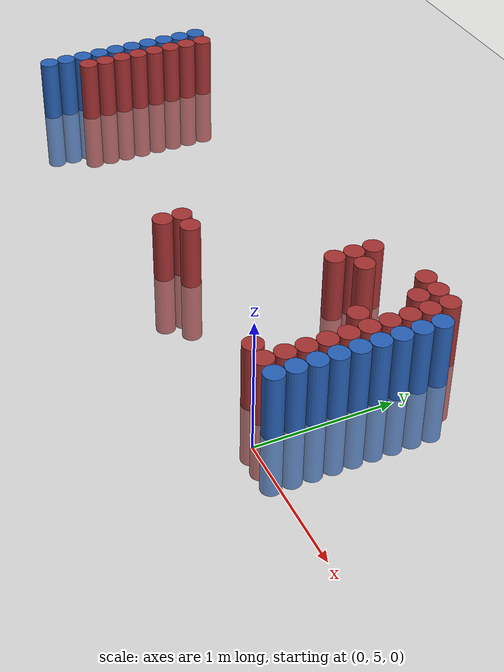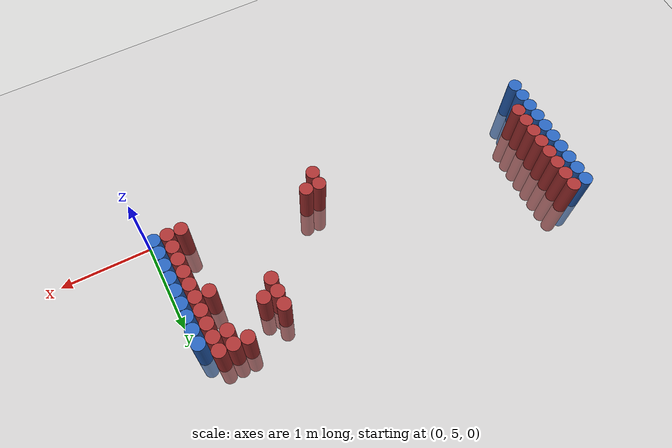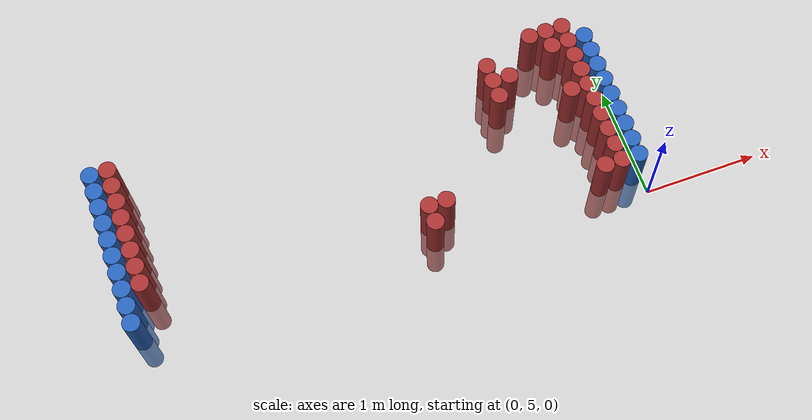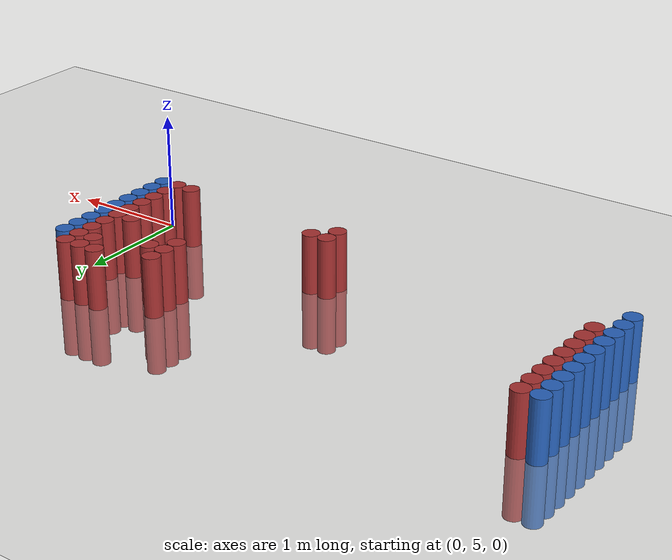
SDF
<sdf version="1.6">
 <world name="default">
  <model name="ground_plane">
   <static>1</static>
   <link name="link">
    <collision name="collision">
     <geometry><plane><normal>0 0 1</normal><size>100 100</size></plane></geometry>
     <surface><friction><ode><mu>100</mu><mu2>50</mu2></ode></friction></surface>
    </collision>
    <visual name="visual">
     <cast_shadows>0</cast_shadows>
     <geometry><plane><normal>0 0 1</normal><size>100 100</size></plane></geometry>
     <material>
      <script><uri>file://media/materials/scripts/gazebo.material</uri><name>Gazebo/Grey</name></script>
     </material>
    </visual>
   </link>
  </model>
  <model name="unit_cylinder_96">
   <static>1</static>
   <pose>-4.425000 5.175000 0.000000 0.000000 0.000000 0.000000</pose>
   <link name="link">
    <inertial>
     <mass>1</mass>
     <inertia><ixx>0.145833</ixx><ixy>0</ixy><ixz>0</ixz><iyy>0.145833</iyy><iyz>0</iyz><izz>0.125</izz></inertia>
    </inertial>
    <collision name="collision">
     <geometry><cylinder><radius>0.075000</radius><length>1</length></cylinder></geometry>
    </collision>
    <visual name="visual">
     <geometry><cylinder><radius>0.075000</radius><length>1</length></cylinder></geometry>
     <material>
      <ambient>0.152000 0.379000 0.720000 1</ambient>
      <diffuse>0.152000 0.379000 0.720000 1</diffuse>
     </material>
     <material>
      <script><name>Gazebo/Grey</name><uri>file://media/materials/scripts/gazebo.material</uri></script>
     </material>
    </visual>
   </link>
  </model>
  <model name="unit_cylinder_97">
   <static>1</static>
   <pose>-4.425000 5.325000 0.000000 0.000000 0.000000 0.000000</pose>
   <link name="link">
    <inertial>
     <mass>1</mass>
     <inertia><ixx>0.145833</ixx><ixy>0</ixy><ixz>0</ixz><iyy>0.145833</iyy><iyz>0</iyz><izz>0.125</izz></inertia>
    </inertial>
    <collision name="collision">
     <geometry><cylinder><radius>0.075000</radius><length>1</length></cylinder></geometry>
    </collision>
    <visual name="visual">
     <geometry><cylinder><radius>0.075000</radius><length>1</length></cylinder></geometry>
     <material>
      <ambient>0.152000 0.379000 0.720000 1</ambient>
      <diffuse>0.152000 0.379000 0.720000 1</diffuse>
     </material>
     <material>
      <script><name>Gazebo/Grey</name><uri>file://media/materials/scripts/gazebo.material</uri></script>
     </material>
    </visual>
   </link>
  </model>
  <model name="unit_cylinder_98">
   <static>1</static>
   <pose>-4.425000 5.475000 0.000000 0.000000 0.000000 0.000000</pose>
   <link name="link">
    <inertial>
     <mass>1</mass>
     <inertia><ixx>0.145833</ixx><ixy>0</ixy><ixz>0</ixz><iyy>0.145833</iyy><iyz>0</iyz><izz>0.125</izz></inertia>
    </inertial>
    <collision name="collision">
     <geometry><cylinder><radius>0.075000</radius><length>1</length></cylinder></geometry>
    </collision>
    <visual name="visual">
     <geometry><cylinder><radius>0.075000</radius><length>1</length></cylinder></geometry>
     <material>
      <ambient>0.152000 0.379000 0.720000 1</ambient>
      <diffuse>0.152000 0.379000 0.720000 1</diffuse>
     </material>
     <material>
      <script><name>Gazebo/Grey</name><uri>file://media/materials/scripts/gazebo.material</uri></script>
     </material>
    </visual>
   </link>
  </model>
  <model name="unit_cylinder_99">
   <static>1</static>
   <pose>-4.425000 5.625000 0.000000 0.000000 0.000000 0.000000</pose>
   <link name="link">
    <inertial>
     <mass>1</mass>
     <inertia><ixx>0.145833</ixx><ixy>0</ixy><ixz>0</ixz><iyy>0.145833</iyy><iyz>0</iyz><izz>0.125</izz></inertia>
    </inertial>
    <collision name="collision">
     <geometry><cylinder><radius>0.075000</radius><length>1</length></cylinder></geometry>
    </collision>
    <visual name="visual">
     <geometry><cylinder><radius>0.075000</radius><length>1</length></cylinder></geometry>
     <material>
      <ambient>0.152000 0.379000 0.720000 1</ambient>
      <diffuse>0.152000 0.379000 0.720000 1</diffuse>
     </material>
     <material>
      <script><name>Gazebo/Grey</name><uri>file://media/materials/scripts/gazebo.material</uri></script>
     </material>
    </visual>
   </link>
  </model>
  <model name="unit_cylinder_100">
   <static>1</static>
   <pose>-4.425000 5.775000 0.000000 0.000000 0.000000 0.000000</pose>
   <link name="link">
    <inertial>
     <mass>1</mass>
     <inertia><ixx>0.145833</ixx><ixy>0</ixy><ixz>0</ixz><iyy>0.145833</iyy><iyz>0</iyz><izz>0.125</izz></inertia>
    </inertial>
    <collision name="collision">
     <geometry><cylinder><radius>0.075000</radius><length>1</length></cylinder></geometry>
    </collision>
    <visual name="visual">
     <geometry><cylinder><radius>0.075000</radius><length>1</length></cylinder></geometry>
     <material>
      <ambient>0.152000 0.379000 0.720000 1</ambient>
      <diffuse>0.152000 0.379000 0.720000 1</diffuse>
     </material>
     <material>
      <script><name>Gazebo/Grey</name><uri>file://media/materials/scripts/gazebo.material</uri></script>
     </material>
    </visual>
   </link>
  </model>
  <model name="unit_cylinder_101">
   <static>1</static>
   <pose>-4.425000 5.925000 0.000000 0.000000 0.000000 0.000000</pose>
   <link name="link">
    <inertial>
     <mass>1</mass>
     <inertia><ixx>0.145833</ixx><ixy>0</ixy><ixz>0</ixz><iyy>0.145833</iyy><iyz>0</iyz><izz>0.125</izz></inertia>
    </inertial>
    <collision name="collision">
     <geometry><cylinder><radius>0.075000</radius><length>1</length></cylinder></geometry>
    </collision>
    <visual name="visual">
     <geometry><cylinder><radius>0.075000</radius><length>1</length></cylinder></geometry>
     <material>
      <ambient>0.152000 0.379000 0.720000 1</ambient>
      <diffuse>0.152000 0.379000 0.720000 1</diffuse>
     </material>
     <material>
      <script><name>Gazebo/Grey</name><uri>file://media/materials/scripts/gazebo.material</uri></script>
     </material>
    </visual>
   </link>
  </model>
  <model name="unit_cylinder_102">
   <static>1</static>
   <pose>-4.425000 6.075000 0.000000 0.000000 0.000000 0.000000</pose>
   <link name="link">
    <inertial>
     <mass>1</mass>
     <inertia><ixx>0.145833</ixx><ixy>0</ixy><ixz>0</ixz><iyy>0.145833</iyy><iyz>0</iyz><izz>0.125</izz></inertia>
    </inertial>
    <collision name="collision">
     <geometry><cylinder><radius>0.075000</radius><length>1</length></cylinder></geometry>
    </collision>
    <visual name="visual">
     <geometry><cylinder><radius>0.075000</radius><length>1</length></cylinder></geometry>
     <material>
      <ambient>0.152000 0.379000 0.720000 1</ambient>
      <diffuse>0.152000 0.379000 0.720000 1</diffuse>
     </material>
     <material>
      <script><name>Gazebo/Grey</name><uri>file://media/materials/scripts/gazebo.material</uri></script>
     </material>
    </visual>
   </link>
  </model>
  <model name="unit_cylinder_103">
   <static>1</static>
   <pose>-4.425000 6.225000 0.000000 0.000000 0.000000 0.000000</pose>
   <link name="link">
    <inertial>
     <mass>1</mass>
     <inertia><ixx>0.145833</ixx><ixy>0</ixy><ixz>0</ixz><iyy>0.145833</iyy><iyz>0</iyz><izz>0.125</izz></inertia>
    </inertial>
    <collision name="collision">
     <geometry><cylinder><radius>0.075000</radius><length>1</length></cylinder></geometry>
    </collision>
    <visual name="visual">
     <geometry><cylinder><radius>0.075000</radius><length>1</length></cylinder></geometry>
     <material>
      <ambient>0.152000 0.379000 0.720000 1</ambient>
      <diffuse>0.152000 0.379000 0.720000 1</diffuse>
     </material>
     <material>
      <script><name>Gazebo/Grey</name><uri>file://media/materials/scripts/gazebo.material</uri></script>
     </material>
    </visual>
   </link>
  </model>
  <model name="unit_cylinder_104">
   <static>1</static>
   <pose>-4.425000 6.375000 0.000000 0.000000 0.000000 0.000000</pose>
   <link name="link">
    <inertial>
     <mass>1</mass>
     <inertia><ixx>0.145833</ixx><ixy>0</ixy><ixz>0</ixz><iyy>0.145833</iyy><iyz>0</iyz><izz>0.125</izz></inertia>
    </inertial>
    <collision name="collision">
     <geometry><cylinder><radius>0.075000</radius><length>1</length></cylinder></geometry>
    </collision>
    <visual name="visual">
     <geometry><cylinder><radius>0.075000</radius><length>1</length></cylinder></geometry>
     <material>
      <ambient>0.152000 0.379000 0.720000 1</ambient>
      <diffuse>0.152000 0.379000 0.720000 1</diffuse>
     </material>
     <material>
      <script><name>Gazebo/Grey</name><uri>file://media/materials/scripts/gazebo.material</uri></script>
     </material>
    </visual>
   </link>
  </model>
  <model name="unit_cylinder_105">
   <static>1</static>
   <pose>-4.425000 6.525000 0.000000 0.000000 0.000000 0.000000</pose>
   <link name="link">
    <inertial>
     <mass>1</mass>
     <inertia><ixx>0.145833</ixx><ixy>0</ixy><ixz>0</ixz><iyy>0.145833</iyy><iyz>0</iyz><izz>0.125</izz></inertia>
    </inertial>
    <collision name="collision">
     <geometry><cylinder><radius>0.075000</radius><length>1</length></cylinder></geometry>
    </collision>
    <visual name="visual">
     <geometry><cylinder><radius>0.075000</radius><length>1</length></cylinder></geometry>
     <material>
      <ambient>0.152000 0.379000 0.720000 1</ambient>
      <diffuse>0.152000 0.379000 0.720000 1</diffuse>
     </material>
     <material>
      <script><name>Gazebo/Grey</name><uri>file://media/materials/scripts/gazebo.material</uri></script>
     </material>
    </visual>
   </link>
  </model>
  <model name="unit_cylinder_126">
   <static>1</static>
   <pose>-4.275000 5.475000 0.000000 0.000000 0.000000 0.000000</pose>
   <link name="link">
    <inertial>
     <mass>1</mass>
     <inertia><ixx>0.145833</ixx><ixy>0</ixy><ixz>0</ixz><iyy>0.145833</iyy><iyz>0</iyz><izz>0.125</izz></inertia>
    </inertial>
    <collision name="collision">
     <geometry><cylinder><radius>0.075000</radius><length>1</length></cylinder></geometry>
    </collision>
    <visual name="visual">
     <geometry><cylinder><radius>0.075000</radius><length>1</length></cylinder></geometry>
     <material>
      <ambient>0.648000 0.192000 0.192000 1</ambient>
      <diffuse>0.648000 0.192000 0.192000 1</diffuse>
     </material>
     <material>
      <script><name>Gazebo/Grey</name><uri>file://media/materials/scripts/gazebo.material</uri></script>
     </material>
    </visual>
   </link>
  </model>
  <model name="unit_cylinder_127">
   <static>1</static>
   <pose>-4.275000 5.625000 0.000000 0.000000 0.000000 0.000000</pose>
   <link name="link">
    <inertial>
     <mass>1</mass>
     <inertia><ixx>0.145833</ixx><ixy>0</ixy><ixz>0</ixz><iyy>0.145833</iyy><iyz>0</iyz><izz>0.125</izz></inertia>
    </inertial>
    <collision name="collision">
     <geometry><cylinder><radius>0.075000</radius><length>1</length></cylinder></geometry>
    </collision>
    <visual name="visual">
     <geometry><cylinder><radius>0.075000</radius><length>1</length></cylinder></geometry>
     <material>
      <ambient>0.648000 0.192000 0.192000 1</ambient>
      <diffuse>0.648000 0.192000 0.192000 1</diffuse>
     </material>
     <material>
      <script><name>Gazebo/Grey</name><uri>file://media/materials/scripts/gazebo.material</uri></script>
     </material>
    </visual>
   </link>
  </model>
  <model name="unit_cylinder_128">
   <static>1</static>
   <pose>-4.275000 5.775000 0.000000 0.000000 0.000000 0.000000</pose>
   <link name="link">
    <inertial>
     <mass>1</mass>
     <inertia><ixx>0.145833</ixx><ixy>0</ixy><ixz>0</ixz><iyy>0.145833</iyy><iyz>0</iyz><izz>0.125</izz></inertia>
    </inertial>
    <collision name="collision">
     <geometry><cylinder><radius>0.075000</radius><length>1</length></cylinder></geometry>
    </collision>
    <visual name="visual">
     <geometry><cylinder><radius>0.075000</radius><length>1</length></cylinder></geometry>
     <material>
      <ambient>0.648000 0.192000 0.192000 1</ambient>
      <diffuse>0.648000 0.192000 0.192000 1</diffuse>
     </material>
     <material>
      <script><name>Gazebo/Grey</name><uri>file://media/materials/scripts/gazebo.material</uri></script>
     </material>
    </visual>
   </link>
  </model>
  <model name="unit_cylinder_129">
   <static>1</static>
   <pose>-4.275000 5.925000 0.000000 0.000000 0.000000 0.000000</pose>
   <link name="link">
    <inertial>
     <mass>1</mass>
     <inertia><ixx>0.145833</ixx><ixy>0</ixy><ixz>0</ixz><iyy>0.145833</iyy><iyz>0</iyz><izz>0.125</izz></inertia>
    </inertial>
    <collision name="collision">
     <geometry><cylinder><radius>0.075000</radius><length>1</length></cylinder></geometry>
    </collision>
    <visual name="visual">
     <geometry><cylinder><radius>0.075000</radius><length>1</length></cylinder></geometry>
     <material>
      <ambient>0.648000 0.192000 0.192000 1</ambient>
      <diffuse>0.648000 0.192000 0.192000 1</diffuse>
     </material>
     <material>
      <script><name>Gazebo/Grey</name><uri>file://media/materials/scripts/gazebo.material</uri></script>
     </material>
    </visual>
   </link>
  </model>
  <model name="unit_cylinder_130">
   <static>1</static>
   <pose>-4.275000 6.075000 0.000000 0.000000 0.000000 0.000000</pose>
   <link name="link">
    <inertial>
     <mass>1</mass>
     <inertia><ixx>0.145833</ixx><ixy>0</ixy><ixz>0</ixz><iyy>0.145833</iyy><iyz>0</iyz><izz>0.125</izz></inertia>
    </inertial>
    <collision name="collision">
     <geometry><cylinder><radius>0.075000</radius><length>1</length></cylinder></geometry>
    </collision>
    <visual name="visual">
     <geometry><cylinder><radius>0.075000</radius><length>1</length></cylinder></geometry>
     <material>
      <ambient>0.648000 0.192000 0.192000 1</ambient>
      <diffuse>0.648000 0.192000 0.192000 1</diffuse>
     </material>
     <material>
      <script><name>Gazebo/Grey</name><uri>file://media/materials/scripts/gazebo.material</uri></script>
     </material>
    </visual>
   </link>
  </model>
  <model name="unit_cylinder_131">
   <static>1</static>
   <pose>-4.275000 6.225000 0.000000 0.000000 0.000000 0.000000</pose>
   <link name="link">
    <inertial>
     <mass>1</mass>
     <inertia><ixx>0.145833</ixx><ixy>0</ixy><ixz>0</ixz><iyy>0.145833</iyy><iyz>0</iyz><izz>0.125</izz></inertia>
    </inertial>
    <collision name="collision">
     <geometry><cylinder><radius>0.075000</radius><length>1</length></cylinder></geometry>
    </collision>
    <visual name="visual">
     <geometry><cylinder><radius>0.075000</radius><length>1</length></cylinder></geometry>
     <material>
      <ambient>0.648000 0.192000 0.192000 1</ambient>
      <diffuse>0.648000 0.192000 0.192000 1</diffuse>
     </material>
     <material>
      <script><name>Gazebo/Grey</name><uri>file://media/materials/scripts/gazebo.material</uri></script>
     </material>
    </visual>
   </link>
  </model>
  <model name="unit_cylinder_132">
   <static>1</static>
   <pose>-4.275000 6.375000 0.000000 0.000000 0.000000 0.000000</pose>
   <link name="link">
    <inertial>
     <mass>1</mass>
     <inertia><ixx>0.145833</ixx><ixy>0</ixy><ixz>0</ixz><iyy>0.145833</iyy><iyz>0</iyz><izz>0.125</izz></inertia>
    </inertial>
    <collision name="collision">
     <geometry><cylinder><radius>0.075000</radius><length>1</length></cylinder></geometry>
    </collision>
    <visual name="visual">
     <geometry><cylinder><radius>0.075000</radius><length>1</length></cylinder></geometry>
     <material>
      <ambient>0.648000 0.192000 0.192000 1</ambient>
      <diffuse>0.648000 0.192000 0.192000 1</diffuse>
     </material>
     <material>
      <script><name>Gazebo/Grey</name><uri>file://media/materials/scripts/gazebo.material</uri></script>
     </material>
    </visual>
   </link>
  </model>
  <model name="unit_cylinder_133">
   <static>1</static>
   <pose>-4.275000 6.525000 0.000000 0.000000 0.000000 0.000000</pose>
   <link name="link">
    <inertial>
     <mass>1</mass>
     <inertia><ixx>0.145833</ixx><ixy>0</ixy><ixz>0</ixz><iyy>0.145833</iyy><iyz>0</iyz><izz>0.125</izz></inertia>
    </inertial>
    <collision name="collision">
     <geometry><cylinder><radius>0.075000</radius><length>1</length></cylinder></geometry>
    </collision>
    <visual name="visual">
     <geometry><cylinder><radius>0.075000</radius><length>1</length></cylinder></geometry>
     <material>
      <ambient>0.648000 0.192000 0.192000 1</ambient>
      <diffuse>0.648000 0.192000 0.192000 1</diffuse>
     </material>
     <material>
      <script><name>Gazebo/Grey</name><uri>file://media/materials/scripts/gazebo.material</uri></script>
     </material>
    </visual>
   </link>
  </model>
  <model name="unit_cylinder_165">
   <static>1</static>
   <pose>-1.875000 5.175000 0.000000 0.000000 0.000000 0.000000</pose>
   <link name="link">
    <inertial>
     <mass>1</mass>
     <inertia><ixx>0.145833</ixx><ixy>0</ixy><ixz>0</ixz><iyy>0.145833</iyy><iyz>0</iyz><izz>0.125</izz></inertia>
    </inertial>
    <collision name="collision">
     <geometry><cylinder><radius>0.075000</radius><length>1</length></cylinder></geometry>
    </collision>
    <visual name="visual">
     <geometry><cylinder><radius>0.075000</radius><length>1</length></cylinder></geometry>
     <material>
      <ambient>0.648000 0.192000 0.192000 1</ambient>
      <diffuse>0.648000 0.192000 0.192000 1</diffuse>
     </material>
     <material>
      <script><name>Gazebo/Grey</name><uri>file://media/materials/scripts/gazebo.material</uri></script>
     </material>
    </visual>
   </link>
  </model>
  <model name="unit_cylinder_166">
   <static>1</static>
   <pose>-1.875000 5.325000 0.000000 0.000000 0.000000 0.000000</pose>
   <link name="link">
    <inertial>
     <mass>1</mass>
     <inertia><ixx>0.145833</ixx><ixy>0</ixy><ixz>0</ixz><iyy>0.145833</iyy><iyz>0</iyz><izz>0.125</izz></inertia>
    </inertial>
    <collision name="collision">
     <geometry><cylinder><radius>0.075000</radius><length>1</length></cylinder></geometry>
    </collision>
    <visual name="visual">
     <geometry><cylinder><radius>0.075000</radius><length>1</length></cylinder></geometry>
     <material>
      <ambient>0.648000 0.192000 0.192000 1</ambient>
      <diffuse>0.648000 0.192000 0.192000 1</diffuse>
     </material>
     <material>
      <script><name>Gazebo/Grey</name><uri>file://media/materials/scripts/gazebo.material</uri></script>
     </material>
    </visual>
   </link>
  </model>
  <model name="unit_cylinder_167">
   <static>1</static>
   <pose>-1.725000 5.325000 0.000000 0.000000 0.000000 0.000000</pose>
   <link name="link">
    <inertial>
     <mass>1</mass>
     <inertia><ixx>0.145833</ixx><ixy>0</ixy><ixz>0</ixz><iyy>0.145833</iyy><iyz>0</iyz><izz>0.125</izz></inertia>
    </inertial>
    <collision name="collision">
     <geometry><cylinder><radius>0.075000</radius><length>1</length></cylinder></geometry>
    </collision>
    <visual name="visual">
     <geometry><cylinder><radius>0.075000</radius><length>1</length></cylinder></geometry>
     <material>
      <ambient>0.648000 0.192000 0.192000 1</ambient>
      <diffuse>0.648000 0.192000 0.192000 1</diffuse>
     </material>
     <material>
      <script><name>Gazebo/Grey</name><uri>file://media/materials/scripts/gazebo.material</uri></script>
     </material>
    </visual>
   </link>
  </model>
  <model name="unit_cylinder_172">
   <static>1</static>
   <pose>-0.975000 6.075000 0.000000 0.000000 0.000000 0.000000</pose>
   <link name="link">
    <inertial>
     <mass>1</mass>
     <inertia><ixx>0.145833</ixx><ixy>0</ixy><ixz>0</ixz><iyy>0.145833</iyy><iyz>0</iyz><izz>0.125</izz></inertia>
    </inertial>
    <collision name="collision">
     <geometry><cylinder><radius>0.075000</radius><length>1</length></cylinder></geometry>
    </collision>
    <visual name="visual">
     <geometry><cylinder><radius>0.075000</radius><length>1</length></cylinder></geometry>
     <material>
      <ambient>0.648000 0.192000 0.192000 1</ambient>
      <diffuse>0.648000 0.192000 0.192000 1</diffuse>
     </material>
     <material>
      <script><name>Gazebo/Grey</name><uri>file://media/materials/scripts/gazebo.material</uri></script>
     </material>
    </visual>
   </link>
  </model>
  <model name="unit_cylinder_173">
   <static>1</static>
   <pose>-0.975000 6.225000 0.000000 0.000000 0.000000 0.000000</pose>
   <link name="link">
    <inertial>
     <mass>1</mass>
     <inertia><ixx>0.145833</ixx><ixy>0</ixy><ixz>0</ixz><iyy>0.145833</iyy><iyz>0</iyz><izz>0.125</izz></inertia>
    </inertial>
    <collision name="collision">
     <geometry><cylinder><radius>0.075000</radius><length>1</length></cylinder></geometry>
    </collision>
    <visual name="visual">
     <geometry><cylinder><radius>0.075000</radius><length>1</length></cylinder></geometry>
     <material>
      <ambient>0.648000 0.192000 0.192000 1</ambient>
      <diffuse>0.648000 0.192000 0.192000 1</diffuse>
     </material>
     <material>
      <script><name>Gazebo/Grey</name><uri>file://media/materials/scripts/gazebo.material</uri></script>
     </material>
    </visual>
   </link>
  </model>
  <model name="unit_cylinder_174">
   <static>1</static>
   <pose>-0.975000 6.375000 0.000000 0.000000 0.000000 0.000000</pose>
   <link name="link">
    <inertial>
     <mass>1</mass>
     <inertia><ixx>0.145833</ixx><ixy>0</ixy><ixz>0</ixz><iyy>0.145833</iyy><iyz>0</iyz><izz>0.125</izz></inertia>
    </inertial>
    <collision name="collision">
     <geometry><cylinder><radius>0.075000</radius><length>1</length></cylinder></geometry>
    </collision>
    <visual name="visual">
     <geometry><cylinder><radius>0.075000</radius><length>1</length></cylinder></geometry>
     <material>
      <ambient>0.648000 0.192000 0.192000 1</ambient>
      <diffuse>0.648000 0.192000 0.192000 1</diffuse>
     </material>
     <material>
      <script><name>Gazebo/Grey</name><uri>file://media/materials/scripts/gazebo.material</uri></script>
     </material>
    </visual>
   </link>
  </model>
  <model name="unit_cylinder_178">
   <static>1</static>
   <pose>-0.825000 6.225000 0.000000 0.000000 0.000000 0.000000</pose>
   <link name="link">
    <inertial>
     <mass>1</mass>
     <inertia><ixx>0.145833</ixx><ixy>0</ixy><ixz>0</ixz><iyy>0.145833</iyy><iyz>0</iyz><izz>0.125</izz></inertia>
    </inertial>
    <collision name="collision">
     <geometry><cylinder><radius>0.075000</radius><length>1</length></cylinder></geometry>
    </collision>
    <visual name="visual">
     <geometry><cylinder><radius>0.075000</radius><length>1</length></cylinder></geometry>
     <material>
      <ambient>0.648000 0.192000 0.192000 1</ambient>
      <diffuse>0.648000 0.192000 0.192000 1</diffuse>
     </material>
     <material>
      <script><name>Gazebo/Grey</name><uri>file://media/materials/scripts/gazebo.material</uri></script>
     </material>
    </visual>
   </link>
  </model>
  <model name="unit_cylinder_187">
   <static>1</static>
   <pose>-0.525000 6.525000 0.000000 0.000000 0.000000 0.000000</pose>
   <link name="link">
    <inertial>
     <mass>1</mass>
     <inertia><ixx>0.145833</ixx><ixy>0</ixy><ixz>0</ixz><iyy>0.145833</iyy><iyz>0</iyz><izz>0.125</izz></inertia>
    </inertial>
    <collision name="collision">
     <geometry><cylinder><radius>0.075000</radius><length>1</length></cylinder></geometry>
    </collision>
    <visual name="visual">
     <geometry><cylinder><radius>0.075000</radius><length>1</length></cylinder></geometry>
     <material>
      <ambient>0.648000 0.192000 0.192000 1</ambient>
      <diffuse>0.648000 0.192000 0.192000 1</diffuse>
     </material>
     <material>
      <script><name>Gazebo/Grey</name><uri>file://media/materials/scripts/gazebo.material</uri></script>
     </material>
    </visual>
   </link>
  </model>
  <model name="unit_cylinder_189">
   <static>1</static>
   <pose>-0.375000 5.175000 0.000000 0.000000 0.000000 0.000000</pose>
   <link name="link">
    <inertial>
     <mass>1</mass>
     <inertia><ixx>0.145833</ixx><ixy>0</ixy><ixz>0</ixz><iyy>0.145833</iyy><iyz>0</iyz><izz>0.125</izz></inertia>
    </inertial>
    <collision name="collision">
     <geometry><cylinder><radius>0.075000</radius><length>1</length></cylinder></geometry>
    </collision>
    <visual name="visual">
     <geometry><cylinder><radius>0.075000</radius><length>1</length></cylinder></geometry>
     <material>
      <ambient>0.648000 0.192000 0.192000 1</ambient>
      <diffuse>0.648000 0.192000 0.192000 1</diffuse>
     </material>
     <material>
      <script><name>Gazebo/Grey</name><uri>file://media/materials/scripts/gazebo.material</uri></script>
     </material>
    </visual>
   </link>
  </model>
  <model name="unit_cylinder_190">
   <static>1</static>
   <pose>-0.375000 5.925000 0.000000 0.000000 0.000000 0.000000</pose>
   <link name="link">
    <inertial>
     <mass>1</mass>
     <inertia><ixx>0.145833</ixx><ixy>0</ixy><ixz>0</ixz><iyy>0.145833</iyy><iyz>0</iyz><izz>0.125</izz></inertia>
    </inertial>
    <collision name="collision">
     <geometry><cylinder><radius>0.075000</radius><length>1</length></cylinder></geometry>
    </collision>
    <visual name="visual">
     <geometry><cylinder><radius>0.075000</radius><length>1</length></cylinder></geometry>
     <material>
      <ambient>0.648000 0.192000 0.192000 1</ambient>
      <diffuse>0.648000 0.192000 0.192000 1</diffuse>
     </material>
     <material>
      <script><name>Gazebo/Grey</name><uri>file://media/materials/scripts/gazebo.material</uri></script>
     </material>
    </visual>
   </link>
  </model>
  <model name="unit_cylinder_191">
   <static>1</static>
   <pose>-0.375000 6.375000 0.000000 0.000000 0.000000 0.000000</pose>
   <link name="link">
    <inertial>
     <mass>1</mass>
     <inertia><ixx>0.145833</ixx><ixy>0</ixy><ixz>0</ixz><iyy>0.145833</iyy><iyz>0</iyz><izz>0.125</izz></inertia>
    </inertial>
    <collision name="collision">
     <geometry><cylinder><radius>0.075000</radius><length>1</length></cylinder></geometry>
    </collision>
    <visual name="visual">
     <geometry><cylinder><radius>0.075000</radius><length>1</length></cylinder></geometry>
     <material>
      <ambient>0.648000 0.192000 0.192000 1</ambient>
      <diffuse>0.648000 0.192000 0.192000 1</diffuse>
     </material>
     <material>
      <script><name>Gazebo/Grey</name><uri>file://media/materials/scripts/gazebo.material</uri></script>
     </material>
    </visual>
   </link>
  </model>
  <model name="unit_cylinder_192">
   <static>1</static>
   <pose>-0.375000 6.525000 0.000000 0.000000 0.000000 0.000000</pose>
   <link name="link">
    <inertial>
     <mass>1</mass>
     <inertia><ixx>0.145833</ixx><ixy>0</ixy><ixz>0</ixz><iyy>0.145833</iyy><iyz>0</iyz><izz>0.125</izz></inertia>
    </inertial>
    <collision name="collision">
     <geometry><cylinder><radius>0.075000</radius><length>1</length></cylinder></geometry>
    </collision>
    <visual name="visual">
     <geometry><cylinder><radius>0.075000</radius><length>1</length></cylinder></geometry>
     <material>
      <ambient>0.648000 0.192000 0.192000 1</ambient>
      <diffuse>0.648000 0.192000 0.192000 1</diffuse>
     </material>
     <material>
      <script><name>Gazebo/Grey</name><uri>file://media/materials/scripts/gazebo.material</uri></script>
     </material>
    </visual>
   </link>
  </model>
  <model name="unit_cylinder_194">
   <static>1</static>
   <pose>-0.225000 5.175000 0.000000 0.000000 0.000000 0.000000</pose>
   <link name="link">
    <inertial>
     <mass>1</mass>
     <inertia><ixx>0.145833</ixx><ixy>0</ixy><ixz>0</ixz><iyy>0.145833</iyy><iyz>0</iyz><izz>0.125</izz></inertia>
    </inertial>
    <collision name="collision">
     <geometry><cylinder><radius>0.075000</radius><length>1</length></cylinder></geometry>
    </collision>
    <visual name="visual">
     <geometry><cylinder><radius>0.075000</radius><length>1</length></cylinder></geometry>
     <material>
      <ambient>0.648000 0.192000 0.192000 1</ambient>
      <diffuse>0.648000 0.192000 0.192000 1</diffuse>
     </material>
     <material>
      <script><name>Gazebo/Grey</name><uri>file://media/materials/scripts/gazebo.material</uri></script>
     </material>
    </visual>
   </link>
  </model>
  <model name="unit_cylinder_195">
   <static>1</static>
   <pose>-0.225000 5.325000 0.000000 0.000000 0.000000 0.000000</pose>
   <link name="link">
    <inertial>
     <mass>1</mass>
     <inertia><ixx>0.145833</ixx><ixy>0</ixy><ixz>0</ixz><iyy>0.145833</iyy><iyz>0</iyz><izz>0.125</izz></inertia>
    </inertial>
    <collision name="collision">
     <geometry><cylinder><radius>0.075000</radius><length>1</length></cylinder></geometry>
    </collision>
    <visual name="visual">
     <geometry><cylinder><radius>0.075000</radius><length>1</length></cylinder></geometry>
     <material>
      <ambient>0.648000 0.192000 0.192000 1</ambient>
      <diffuse>0.648000 0.192000 0.192000 1</diffuse>
     </material>
     <material>
      <script><name>Gazebo/Grey</name><uri>file://media/materials/scripts/gazebo.material</uri></script>
     </material>
    </visual>
   </link>
  </model>
  <model name="unit_cylinder_196">
   <static>1</static>
   <pose>-0.225000 5.475000 0.000000 0.000000 0.000000 0.000000</pose>
   <link name="link">
    <inertial>
     <mass>1</mass>
     <inertia><ixx>0.145833</ixx><ixy>0</ixy><ixz>0</ixz><iyy>0.145833</iyy><iyz>0</iyz><izz>0.125</izz></inertia>
    </inertial>
    <collision name="collision">
     <geometry><cylinder><radius>0.075000</radius><length>1</length></cylinder></geometry>
    </collision>
    <visual name="visual">
     <geometry><cylinder><radius>0.075000</radius><length>1</length></cylinder></geometry>
     <material>
      <ambient>0.648000 0.192000 0.192000 1</ambient>
      <diffuse>0.648000 0.192000 0.192000 1</diffuse>
     </material>
     <material>
      <script><name>Gazebo/Grey</name><uri>file://media/materials/scripts/gazebo.material</uri></script>
     </material>
    </visual>
   </link>
  </model>
  <model name="unit_cylinder_197">
   <static>1</static>
   <pose>-0.225000 5.625000 0.000000 0.000000 0.000000 0.000000</pose>
   <link name="link">
    <inertial>
     <mass>1</mass>
     <inertia><ixx>0.145833</ixx><ixy>0</ixy><ixz>0</ixz><iyy>0.145833</iyy><iyz>0</iyz><izz>0.125</izz></inertia>
    </inertial>
    <collision name="collision">
     <geometry><cylinder><radius>0.075000</radius><length>1</length></cylinder></geometry>
    </collision>
    <visual name="visual">
     <geometry><cylinder><radius>0.075000</radius><length>1</length></cylinder></geometry>
     <material>
      <ambient>0.648000 0.192000 0.192000 1</ambient>
      <diffuse>0.648000 0.192000 0.192000 1</diffuse>
     </material>
     <material>
      <script><name>Gazebo/Grey</name><uri>file://media/materials/scripts/gazebo.material</uri></script>
     </material>
    </visual>
   </link>
  </model>
  <model name="unit_cylinder_198">
   <static>1</static>
   <pose>-0.225000 5.775000 0.000000 0.000000 0.000000 0.000000</pose>
   <link name="link">
    <inertial>
     <mass>1</mass>
     <inertia><ixx>0.145833</ixx><ixy>0</ixy><ixz>0</ixz><iyy>0.145833</iyy><iyz>0</iyz><izz>0.125</izz></inertia>
    </inertial>
    <collision name="collision">
     <geometry><cylinder><radius>0.075000</radius><length>1</length></cylinder></geometry>
    </collision>
    <visual name="visual">
     <geometry><cylinder><radius>0.075000</radius><length>1</length></cylinder></geometry>
     <material>
      <ambient>0.648000 0.192000 0.192000 1</ambient>
      <diffuse>0.648000 0.192000 0.192000 1</diffuse>
     </material>
     <material>
      <script><name>Gazebo/Grey</name><uri>file://media/materials/scripts/gazebo.material</uri></script>
     </material>
    </visual>
   </link>
  </model>
  <model name="unit_cylinder_199">
   <static>1</static>
   <pose>-0.225000 5.925000 0.000000 0.000000 0.000000 0.000000</pose>
   <link name="link">
    <inertial>
     <mass>1</mass>
     <inertia><ixx>0.145833</ixx><ixy>0</ixy><ixz>0</ixz><iyy>0.145833</iyy><iyz>0</iyz><izz>0.125</izz></inertia>
    </inertial>
    <collision name="collision">
     <geometry><cylinder><radius>0.075000</radius><length>1</length></cylinder></geometry>
    </collision>
    <visual name="visual">
     <geometry><cylinder><radius>0.075000</radius><length>1</length></cylinder></geometry>
     <material>
      <ambient>0.648000 0.192000 0.192000 1</ambient>
      <diffuse>0.648000 0.192000 0.192000 1</diffuse>
     </material>
     <material>
      <script><name>Gazebo/Grey</name><uri>file://media/materials/scripts/gazebo.material</uri></script>
     </material>
    </visual>
   </link>
  </model>
  <model name="unit_cylinder_200">
   <static>1</static>
   <pose>-0.225000 6.075000 0.000000 0.000000 0.000000 0.000000</pose>
   <link name="link">
    <inertial>
     <mass>1</mass>
     <inertia><ixx>0.145833</ixx><ixy>0</ixy><ixz>0</ixz><iyy>0.145833</iyy><iyz>0</iyz><izz>0.125</izz></inertia>
    </inertial>
    <collision name="collision">
     <geometry><cylinder><radius>0.075000</radius><length>1</length></cylinder></geometry>
    </collision>
    <visual name="visual">
     <geometry><cylinder><radius>0.075000</radius><length>1</length></cylinder></geometry>
     <material>
      <ambient>0.648000 0.192000 0.192000 1</ambient>
      <diffuse>0.648000 0.192000 0.192000 1</diffuse>
     </material>
     <material>
      <script><name>Gazebo/Grey</name><uri>file://media/materials/scripts/gazebo.material</uri></script>
     </material>
    </visual>
   </link>
  </model>
  <model name="unit_cylinder_201">
   <static>1</static>
   <pose>-0.225000 6.225000 0.000000 0.000000 0.000000 0.000000</pose>
   <link name="link">
    <inertial>
     <mass>1</mass>
     <inertia><ixx>0.145833</ixx><ixy>0</ixy><ixz>0</ixz><iyy>0.145833</iyy><iyz>0</iyz><izz>0.125</izz></inertia>
    </inertial>
    <collision name="collision">
     <geometry><cylinder><radius>0.075000</radius><length>1</length></cylinder></geometry>
    </collision>
    <visual name="visual">
     <geometry><cylinder><radius>0.075000</radius><length>1</length></cylinder></geometry>
     <material>
      <ambient>0.648000 0.192000 0.192000 1</ambient>
      <diffuse>0.648000 0.192000 0.192000 1</diffuse>
     </material>
     <material>
      <script><name>Gazebo/Grey</name><uri>file://media/materials/scripts/gazebo.material</uri></script>
     </material>
    </visual>
   </link>
  </model>
  <model name="unit_cylinder_202">
   <static>1</static>
   <pose>-0.225000 6.375000 0.000000 0.000000 0.000000 0.000000</pose>
   <link name="link">
    <inertial>
     <mass>1</mass>
     <inertia><ixx>0.145833</ixx><ixy>0</ixy><ixz>0</ixz><iyy>0.145833</iyy><iyz>0</iyz><izz>0.125</izz></inertia>
    </inertial>
    <collision name="collision">
     <geometry><cylinder><radius>0.075000</radius><length>1</length></cylinder></geometry>
    </collision>
    <visual name="visual">
     <geometry><cylinder><radius>0.075000</radius><length>1</length></cylinder></geometry>
     <material>
      <ambient>0.648000 0.192000 0.192000 1</ambient>
      <diffuse>0.648000 0.192000 0.192000 1</diffuse>
     </material>
     <material>
      <script><name>Gazebo/Grey</name><uri>file://media/materials/scripts/gazebo.material</uri></script>
     </material>
    </visual>
   </link>
  </model>
  <model name="unit_cylinder_203">
   <static>1</static>
   <pose>-0.225000 6.525000 0.000000 0.000000 0.000000 0.000000</pose>
   <link name="link">
    <inertial>
     <mass>1</mass>
     <inertia><ixx>0.145833</ixx><ixy>0</ixy><ixz>0</ixz><iyy>0.145833</iyy><iyz>0</iyz><izz>0.125</izz></inertia>
    </inertial>
    <collision name="collision">
     <geometry><cylinder><radius>0.075000</radius><length>1</length></cylinder></geometry>
    </collision>
    <visual name="visual">
     <geometry><cylinder><radius>0.075000</radius><length>1</length></cylinder></geometry>
     <material>
      <ambient>0.648000 0.192000 0.192000 1</ambient>
      <diffuse>0.648000 0.192000 0.192000 1</diffuse>
     </material>
     <material>
      <script><name>Gazebo/Grey</name><uri>file://media/materials/scripts/gazebo.material</uri></script>
     </material>
    </visual>
   </link>
  </model>
  <model name="unit_cylinder_212">
   <static>1</static>
   <pose>-0.075000 5.175000 0.000000 0.000000 0.000000 0.000000</pose>
   <link name="link">
    <inertial>
     <mass>1</mass>
     <inertia><ixx>0.145833</ixx><ixy>0</ixy><ixz>0</ixz><iyy>0.145833</iyy><iyz>0</iyz><izz>0.125</izz></inertia>
    </inertial>
    <collision name="collision">
     <geometry><cylinder><radius>0.075000</radius><length>1</length></cylinder></geometry>
    </collision>
    <visual name="visual">
     <geometry><cylinder><radius>0.075000</radius><length>1</length></cylinder></geometry>
     <material>
      <ambient>0.152000 0.379000 0.720000 1</ambient>
      <diffuse>0.152000 0.379000 0.720000 1</diffuse>
     </material>
     <material>
      <script><name>Gazebo/Grey</name><uri>file://media/materials/scripts/gazebo.material</uri></script>
     </material>
    </visual>
   </link>
  </model>
  <model name="unit_cylinder_213">
   <static>1</static>
   <pose>-0.075000 5.325000 0.000000 0.000000 0.000000 0.000000</pose>
   <link name="link">
    <inertial>
     <mass>1</mass>
     <inertia><ixx>0.145833</ixx><ixy>0</ixy><ixz>0</ixz><iyy>0.145833</iyy><iyz>0</iyz><izz>0.125</izz></inertia>
    </inertial>
    <collision name="collision">
     <geometry><cylinder><radius>0.075000</radius><length>1</length></cylinder></geometry>
    </collision>
    <visual name="visual">
     <geometry><cylinder><radius>0.075000</radius><length>1</length></cylinder></geometry>
     <material>
      <ambient>0.152000 0.379000 0.720000 1</ambient>
      <diffuse>0.152000 0.379000 0.720000 1</diffuse>
     </material>
     <material>
      <script><name>Gazebo/Grey</name><uri>file://media/materials/scripts/gazebo.material</uri></script>
     </material>
    </visual>
   </link>
  </model>
  <model name="unit_cylinder_214">
   <static>1</static>
   <pose>-0.075000 5.475000 0.000000 0.000000 0.000000 0.000000</pose>
   <link name="link">
    <inertial>
     <mass>1</mass>
     <inertia><ixx>0.145833</ixx><ixy>0</ixy><ixz>0</ixz><iyy>0.145833</iyy><iyz>0</iyz><izz>0.125</izz></inertia>
    </inertial>
    <collision name="collision">
     <geometry><cylinder><radius>0.075000</radius><length>1</length></cylinder></geometry>
    </collision>
    <visual name="visual">
     <geometry><cylinder><radius>0.075000</radius><length>1</length></cylinder></geometry>
     <material>
      <ambient>0.152000 0.379000 0.720000 1</ambient>
      <diffuse>0.152000 0.379000 0.720000 1</diffuse>
     </material>
     <material>
      <script><name>Gazebo/Grey</name><uri>file://media/materials/scripts/gazebo.material</uri></script>
     </material>
    </visual>
   </link>
  </model>
  <model name="unit_cylinder_215">
   <static>1</static>
   <pose>-0.075000 5.625000 0.000000 0.000000 0.000000 0.000000</pose>
   <link name="link">
    <inertial>
     <mass>1</mass>
     <inertia><ixx>0.145833</ixx><ixy>0</ixy><ixz>0</ixz><iyy>0.145833</iyy><iyz>0</iyz><izz>0.125</izz></inertia>
    </inertial>
    <collision name="collision">
     <geometry><cylinder><radius>0.075000</radius><length>1</length></cylinder></geometry>
    </collision>
    <visual name="visual">
     <geometry><cylinder><radius>0.075000</radius><length>1</length></cylinder></geometry>
     <material>
      <ambient>0.152000 0.379000 0.720000 1</ambient>
      <diffuse>0.152000 0.379000 0.720000 1</diffuse>
     </material>
     <material>
      <script><name>Gazebo/Grey</name><uri>file://media/materials/scripts/gazebo.material</uri></script>
     </material>
    </visual>
   </link>
  </model>
  <model name="unit_cylinder_216">
   <static>1</static>
   <pose>-0.075000 5.775000 0.000000 0.000000 0.000000 0.000000</pose>
   <link name="link">
    <inertial>
     <mass>1</mass>
     <inertia><ixx>0.145833</ixx><ixy>0</ixy><ixz>0</ixz><iyy>0.145833</iyy><iyz>0</iyz><izz>0.125</izz></inertia>
    </inertial>
    <collision name="collision">
     <geometry><cylinder><radius>0.075000</radius><length>1</length></cylinder></geometry>
    </collision>
    <visual name="visual">
     <geometry><cylinder><radius>0.075000</radius><length>1</length></cylinder></geometry>
     <material>
      <ambient>0.152000 0.379000 0.720000 1</ambient>
      <diffuse>0.152000 0.379000 0.720000 1</diffuse>
     </material>
     <material>
      <script><name>Gazebo/Grey</name><uri>file://media/materials/scripts/gazebo.material</uri></script>
     </material>
    </visual>
   </link>
  </model>
  <model name="unit_cylinder_217">
   <static>1</static>
   <pose>-0.075000 5.925000 0.000000 0.000000 0.000000 0.000000</pose>
   <link name="link">
    <inertial>
     <mass>1</mass>
     <inertia><ixx>0.145833</ixx><ixy>0</ixy><ixz>0</ixz><iyy>0.145833</iyy><iyz>0</iyz><izz>0.125</izz></inertia>
    </inertial>
    <collision name="collision">
     <geometry><cylinder><radius>0.075000</radius><length>1</length></cylinder></geometry>
    </collision>
    <visual name="visual">
     <geometry><cylinder><radius>0.075000</radius><length>1</length></cylinder></geometry>
     <material>
      <ambient>0.152000 0.379000 0.720000 1</ambient>
      <diffuse>0.152000 0.379000 0.720000 1</diffuse>
     </material>
     <material>
      <script><name>Gazebo/Grey</name><uri>file://media/materials/scripts/gazebo.material</uri></script>
     </material>
    </visual>
   </link>
  </model>
  <model name="unit_cylinder_218">
   <static>1</static>
   <pose>-0.075000 6.075000 0.000000 0.000000 0.000000 0.000000</pose>
   <link name="link">
    <inertial>
     <mass>1</mass>
     <inertia><ixx>0.145833</ixx><ixy>0</ixy><ixz>0</ixz><iyy>0.145833</iyy><iyz>0</iyz><izz>0.125</izz></inertia>
    </inertial>
    <collision name="collision">
     <geometry><cylinder><radius>0.075000</radius><length>1</length></cylinder></geometry>
    </collision>
    <visual name="visual">
     <geometry><cylinder><radius>0.075000</radius><length>1</length></cylinder></geometry>
     <material>
      <ambient>0.152000 0.379000 0.720000 1</ambient>
      <diffuse>0.152000 0.379000 0.720000 1</diffuse>
     </material>
     <material>
      <script><name>Gazebo/Grey</name><uri>file://media/materials/scripts/gazebo.material</uri></script>
     </material>
    </visual>
   </link>
  </model>
  <model name="unit_cylinder_219">
   <static>1</static>
   <pose>-0.075000 6.225000 0.000000 0.000000 0.000000 0.000000</pose>
   <link name="link">
    <inertial>
     <mass>1</mass>
     <inertia><ixx>0.145833</ixx><ixy>0</ixy><ixz>0</ixz><iyy>0.145833</iyy><iyz>0</iyz><izz>0.125</izz></inertia>
    </inertial>
    <collision name="collision">
     <geometry><cylinder><radius>0.075000</radius><length>1</length></cylinder></geometry>
    </collision>
    <visual name="visual">
     <geometry><cylinder><radius>0.075000</radius><length>1</length></cylinder></geometry>
     <material>
      <ambient>0.152000 0.379000 0.720000 1</ambient>
      <diffuse>0.152000 0.379000 0.720000 1</diffuse>
     </material>
     <material>
      <script><name>Gazebo/Grey</name><uri>file://media/materials/scripts/gazebo.material</uri></script>
     </material>
    </visual>
   </link>
  </model>
  <model name="unit_cylinder_220">
   <static>1</static>
   <pose>-0.075000 6.375000 0.000000 0.000000 0.000000 0.000000</pose>
   <link name="link">
    <inertial>
     <mass>1</mass>
     <inertia><ixx>0.145833</ixx><ixy>0</ixy><ixz>0</ixz><iyy>0.145833</iyy><iyz>0</iyz><izz>0.125</izz></inertia>
    </inertial>
    <collision name="collision">
     <geometry><cylinder><radius>0.075000</radius><length>1</length></cylinder></geometry>
    </collision>
    <visual name="visual">
     <geometry><cylinder><radius>0.075000</radius><length>1</length></cylinder></geometry>
     <material>
      <ambient>0.152000 0.379000 0.720000 1</ambient>
      <diffuse>0.152000 0.379000 0.720000 1</diffuse>
     </material>
     <material>
      <script><name>Gazebo/Grey</name><uri>file://media/materials/scripts/gazebo.material</uri></script>
     </material>
    </visual>
   </link>
  </model>
 </world>
</sdf>
